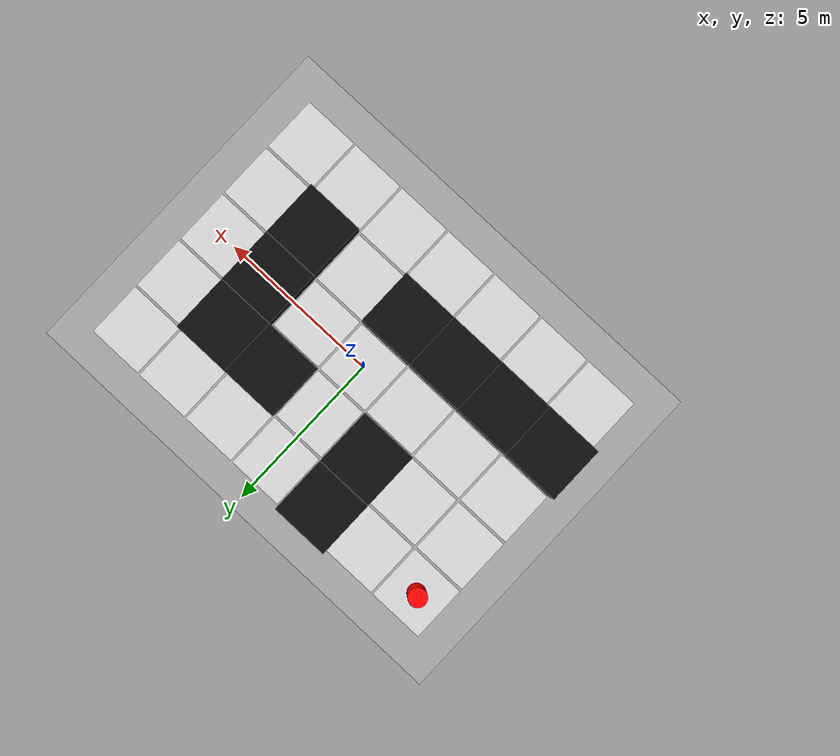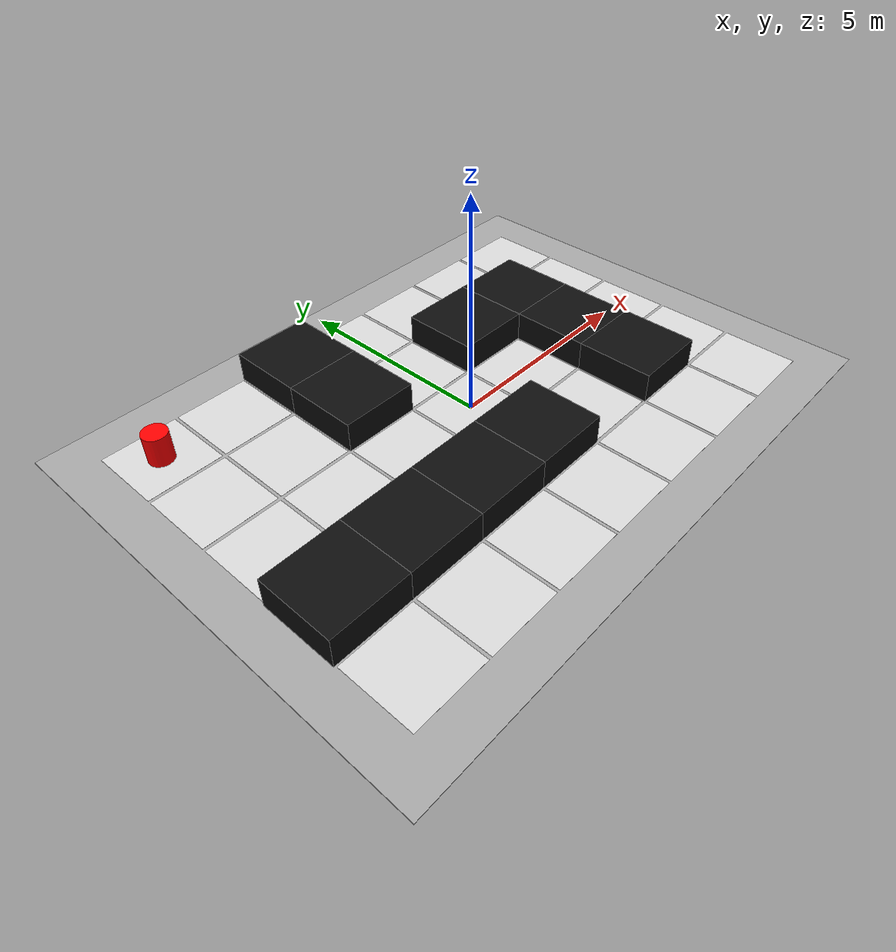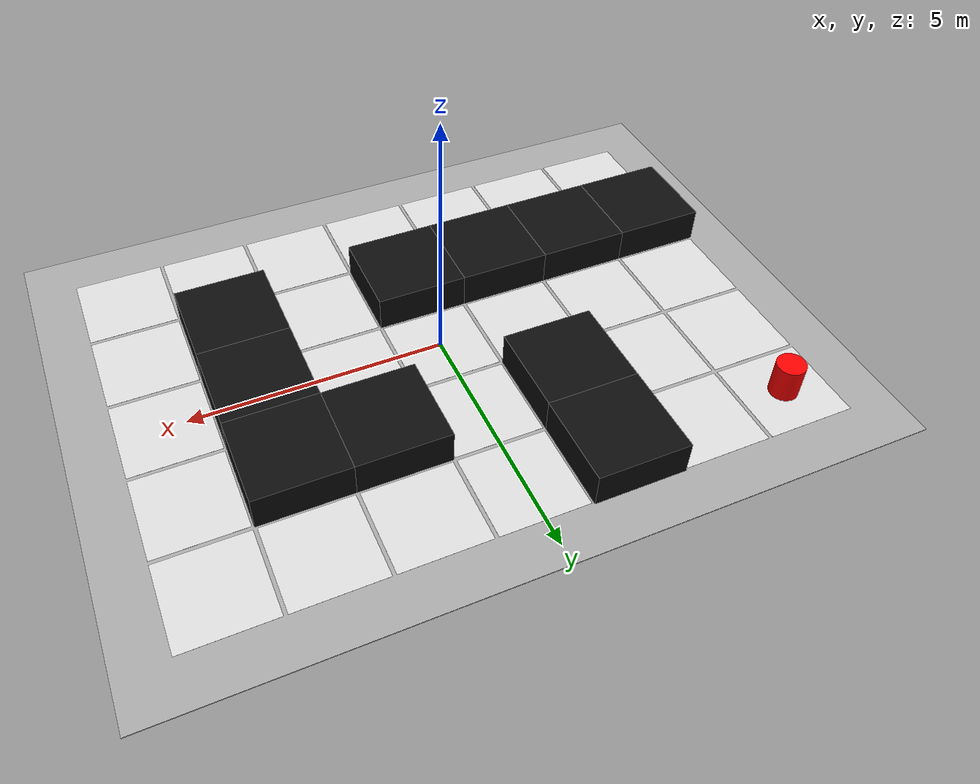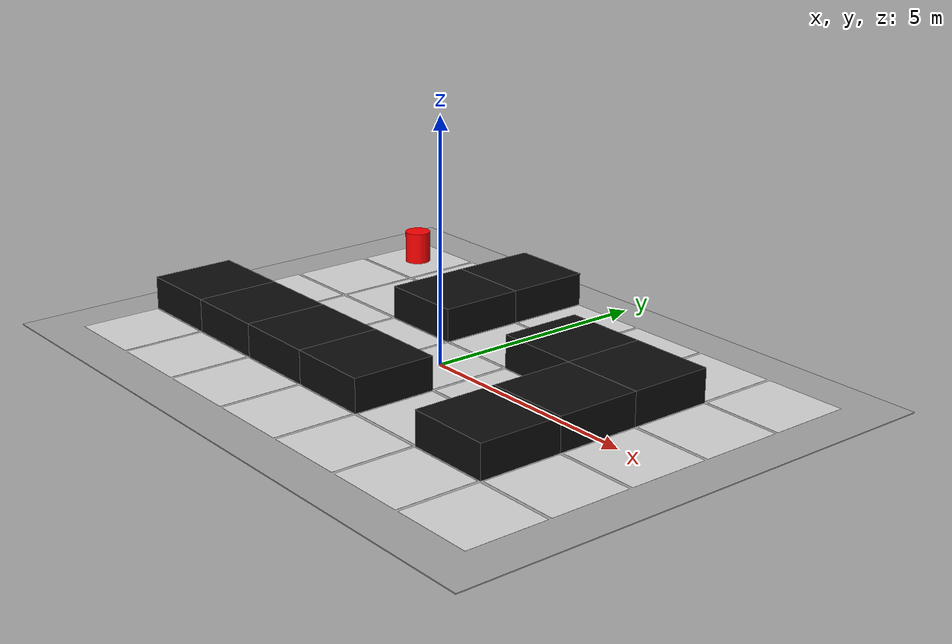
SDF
<?xml version="1.0" ?>
<sdf version="1.6">
  <world name="ssm_2d_grid_world">
    <plugin name="gazebo_ros_init" filename="libgazebo_ros_init.so"/>
    <plugin name="gazebo_ros_factory" filename="libgazebo_ros_factory.so"/>

    <include>
      <uri>model://sun</uri>
    </include>

    <physics name="default_physics" type="ode">
      <max_step_size>0.001</max_step_size>
      <real_time_factor>1.0</real_time_factor>
    </physics>

    <model name="grid_floor">
      <static>true</static>
      <pose>0.000 0.000 -0.010 0 0 0</pose>
      <link name="link">
        <collision name="collision">
          <geometry>
            <box><size>14.400 10.800 0.020</size></box>
          </geometry>
        </collision>
        <visual name="visual">
          <geometry>
            <box><size>14.400 10.800 0.020</size></box>
          </geometry>
          <material>
            <ambient>0.65 0.65 0.65 1</ambient>
            <diffuse>0.65 0.65 0.65 1</diffuse>
          </material>
        </visual>
      </link>
    </model>

    <model name="cell_0_0">
      <static>true</static>
      <pose>-5.400 3.600 0.001 0 0 0</pose>
      <link name="link">
        <collision name="collision">
          <geometry>
            <box><size>1.728 1.728 0.002</size></box>
          </geometry>
        </collision>
        <visual name="visual">
          <geometry>
            <box><size>1.728 1.728 0.002</size></box>
          </geometry>
          <material>
            <ambient>0.85 0.85 0.85 1</ambient>
            <diffuse>0.85 0.85 0.85 1</diffuse>
          </material>
        </visual>
      </link>
    </model>

    <model name="cell_0_1">
      <static>true</static>
      <pose>-3.600 3.600 0.001 0 0 0</pose>
      <link name="link">
        <collision name="collision">
          <geometry>
            <box><size>1.728 1.728 0.002</size></box>
          </geometry>
        </collision>
        <visual name="visual">
          <geometry>
            <box><size>1.728 1.728 0.002</size></box>
          </geometry>
          <material>
            <ambient>0.85 0.85 0.85 1</ambient>
            <diffuse>0.85 0.85 0.85 1</diffuse>
          </material>
        </visual>
      </link>
    </model>

    <model name="wall_0_2">
      <static>true</static>
      <pose>-1.800 3.600 0.350 0 0 0</pose>
      <link name="link">
        <collision name="collision">
          <geometry>
            <box><size>1.800 1.800 0.700</size></box>
          </geometry>
        </collision>
        <visual name="visual">
          <geometry>
            <box><size>1.800 1.800 0.700</size></box>
          </geometry>
          <material>
            <ambient>0.05 0.05 0.05 1</ambient>
            <diffuse>0.05 0.05 0.05 1</diffuse>
          </material>
        </visual>
      </link>
    </model>

    <model name="cell_0_3">
      <static>true</static>
      <pose>0.000 3.600 0.001 0 0 0</pose>
      <link name="link">
        <collision name="collision">
          <geometry>
            <box><size>1.728 1.728 0.002</size></box>
          </geometry>
        </collision>
        <visual name="visual">
          <geometry>
            <box><size>1.728 1.728 0.002</size></box>
          </geometry>
          <material>
            <ambient>0.85 0.85 0.85 1</ambient>
            <diffuse>0.85 0.85 0.85 1</diffuse>
          </material>
        </visual>
      </link>
    </model>

    <model name="cell_0_4">
      <static>true</static>
      <pose>1.800 3.600 0.001 0 0 0</pose>
      <link name="link">
        <collision name="collision">
          <geometry>
            <box><size>1.728 1.728 0.002</size></box>
          </geometry>
        </collision>
        <visual name="visual">
          <geometry>
            <box><size>1.728 1.728 0.002</size></box>
          </geometry>
          <material>
            <ambient>0.85 0.85 0.85 1</ambient>
            <diffuse>0.85 0.85 0.85 1</diffuse>
          </material>
        </visual>
      </link>
    </model>

    <model name="cell_0_5">
      <static>true</static>
      <pose>3.600 3.600 0.001 0 0 0</pose>
      <link name="link">
        <collision name="collision">
          <geometry>
            <box><size>1.728 1.728 0.002</size></box>
          </geometry>
        </collision>
        <visual name="visual">
          <geometry>
            <box><size>1.728 1.728 0.002</size></box>
          </geometry>
          <material>
            <ambient>0.85 0.85 0.85 1</ambient>
            <diffuse>0.85 0.85 0.85 1</diffuse>
          </material>
        </visual>
      </link>
    </model>

    <model name="cell_0_6">
      <static>true</static>
      <pose>5.400 3.600 0.001 0 0 0</pose>
      <link name="link">
        <collision name="collision">
          <geometry>
            <box><size>1.728 1.728 0.002</size></box>
          </geometry>
        </collision>
        <visual name="visual">
          <geometry>
            <box><size>1.728 1.728 0.002</size></box>
          </geometry>
          <material>
            <ambient>0.85 0.85 0.85 1</ambient>
            <diffuse>0.85 0.85 0.85 1</diffuse>
          </material>
        </visual>
      </link>
    </model>

    <model name="cell_1_0">
      <static>true</static>
      <pose>-5.400 1.800 0.001 0 0 0</pose>
      <link name="link">
        <collision name="collision">
          <geometry>
            <box><size>1.728 1.728 0.002</size></box>
          </geometry>
        </collision>
        <visual name="visual">
          <geometry>
            <box><size>1.728 1.728 0.002</size></box>
          </geometry>
          <material>
            <ambient>0.85 0.85 0.85 1</ambient>
            <diffuse>0.85 0.85 0.85 1</diffuse>
          </material>
        </visual>
      </link>
    </model>

    <model name="cell_1_1">
      <static>true</static>
      <pose>-3.600 1.800 0.001 0 0 0</pose>
      <link name="link">
        <collision name="collision">
          <geometry>
            <box><size>1.728 1.728 0.002</size></box>
          </geometry>
        </collision>
        <visual name="visual">
          <geometry>
            <box><size>1.728 1.728 0.002</size></box>
          </geometry>
          <material>
            <ambient>0.85 0.85 0.85 1</ambient>
            <diffuse>0.85 0.85 0.85 1</diffuse>
          </material>
        </visual>
      </link>
    </model>

    <model name="wall_1_2">
      <static>true</static>
      <pose>-1.800 1.800 0.350 0 0 0</pose>
      <link name="link">
        <collision name="collision">
          <geometry>
            <box><size>1.800 1.800 0.700</size></box>
          </geometry>
        </collision>
        <visual name="visual">
          <geometry>
            <box><size>1.800 1.800 0.700</size></box>
          </geometry>
          <material>
            <ambient>0.05 0.05 0.05 1</ambient>
            <diffuse>0.05 0.05 0.05 1</diffuse>
          </material>
        </visual>
      </link>
    </model>

    <model name="cell_1_3">
      <static>true</static>
      <pose>0.000 1.800 0.001 0 0 0</pose>
      <link name="link">
        <collision name="collision">
          <geometry>
            <box><size>1.728 1.728 0.002</size></box>
          </geometry>
        </collision>
        <visual name="visual">
          <geometry>
            <box><size>1.728 1.728 0.002</size></box>
          </geometry>
          <material>
            <ambient>0.85 0.85 0.85 1</ambient>
            <diffuse>0.85 0.85 0.85 1</diffuse>
          </material>
        </visual>
      </link>
    </model>

    <model name="wall_1_4">
      <static>true</static>
      <pose>1.800 1.800 0.350 0 0 0</pose>
      <link name="link">
        <collision name="collision">
          <geometry>
            <box><size>1.800 1.800 0.700</size></box>
          </geometry>
        </collision>
        <visual name="visual">
          <geometry>
            <box><size>1.800 1.800 0.700</size></box>
          </geometry>
          <material>
            <ambient>0.05 0.05 0.05 1</ambient>
            <diffuse>0.05 0.05 0.05 1</diffuse>
          </material>
        </visual>
      </link>
    </model>

    <model name="wall_1_5">
      <static>true</static>
      <pose>3.600 1.800 0.350 0 0 0</pose>
      <link name="link">
        <collision name="collision">
          <geometry>
            <box><size>1.800 1.800 0.700</size></box>
          </geometry>
        </collision>
        <visual name="visual">
          <geometry>
            <box><size>1.800 1.800 0.700</size></box>
          </geometry>
          <material>
            <ambient>0.05 0.05 0.05 1</ambient>
            <diffuse>0.05 0.05 0.05 1</diffuse>
          </material>
        </visual>
      </link>
    </model>

    <model name="cell_1_6">
      <static>true</static>
      <pose>5.400 1.800 0.001 0 0 0</pose>
      <link name="link">
        <collision name="collision">
          <geometry>
            <box><size>1.728 1.728 0.002</size></box>
          </geometry>
        </collision>
        <visual name="visual">
          <geometry>
            <box><size>1.728 1.728 0.002</size></box>
          </geometry>
          <material>
            <ambient>0.85 0.85 0.85 1</ambient>
            <diffuse>0.85 0.85 0.85 1</diffuse>
          </material>
        </visual>
      </link>
    </model>

    <model name="cell_2_0">
      <static>true</static>
      <pose>-5.400 0.000 0.001 0 0 0</pose>
      <link name="link">
        <collision name="collision">
          <geometry>
            <box><size>1.728 1.728 0.002</size></box>
          </geometry>
        </collision>
        <visual name="visual">
          <geometry>
            <box><size>1.728 1.728 0.002</size></box>
          </geometry>
          <material>
            <ambient>0.85 0.85 0.85 1</ambient>
            <diffuse>0.85 0.85 0.85 1</diffuse>
          </material>
        </visual>
      </link>
    </model>

    <model name="cell_2_1">
      <static>true</static>
      <pose>-3.600 0.000 0.001 0 0 0</pose>
      <link name="link">
        <collision name="collision">
          <geometry>
            <box><size>1.728 1.728 0.002</size></box>
          </geometry>
        </collision>
        <visual name="visual">
          <geometry>
            <box><size>1.728 1.728 0.002</size></box>
          </geometry>
          <material>
            <ambient>0.85 0.85 0.85 1</ambient>
            <diffuse>0.85 0.85 0.85 1</diffuse>
          </material>
        </visual>
      </link>
    </model>

    <model name="cell_2_2">
      <static>true</static>
      <pose>-1.800 0.000 0.001 0 0 0</pose>
      <link name="link">
        <collision name="collision">
          <geometry>
            <box><size>1.728 1.728 0.002</size></box>
          </geometry>
        </collision>
        <visual name="visual">
          <geometry>
            <box><size>1.728 1.728 0.002</size></box>
          </geometry>
          <material>
            <ambient>0.85 0.85 0.85 1</ambient>
            <diffuse>0.85 0.85 0.85 1</diffuse>
          </material>
        </visual>
      </link>
    </model>

    <model name="cell_2_3">
      <static>true</static>
      <pose>0.000 0.000 0.001 0 0 0</pose>
      <link name="link">
        <collision name="collision">
          <geometry>
            <box><size>1.728 1.728 0.002</size></box>
          </geometry>
        </collision>
        <visual name="visual">
          <geometry>
            <box><size>1.728 1.728 0.002</size></box>
          </geometry>
          <material>
            <ambient>0.85 0.85 0.85 1</ambient>
            <diffuse>0.85 0.85 0.85 1</diffuse>
          </material>
        </visual>
      </link>
    </model>

    <model name="cell_2_4">
      <static>true</static>
      <pose>1.800 0.000 0.001 0 0 0</pose>
      <link name="link">
        <collision name="collision">
          <geometry>
            <box><size>1.728 1.728 0.002</size></box>
          </geometry>
        </collision>
        <visual name="visual">
          <geometry>
            <box><size>1.728 1.728 0.002</size></box>
          </geometry>
          <material>
            <ambient>0.85 0.85 0.85 1</ambient>
            <diffuse>0.85 0.85 0.85 1</diffuse>
          </material>
        </visual>
      </link>
    </model>

    <model name="wall_2_5">
      <static>true</static>
      <pose>3.600 0.000 0.350 0 0 0</pose>
      <link name="link">
        <collision name="collision">
          <geometry>
            <box><size>1.800 1.800 0.700</size></box>
          </geometry>
        </collision>
        <visual name="visual">
          <geometry>
            <box><size>1.800 1.800 0.700</size></box>
          </geometry>
          <material>
            <ambient>0.05 0.05 0.05 1</ambient>
            <diffuse>0.05 0.05 0.05 1</diffuse>
          </material>
        </visual>
      </link>
    </model>

    <model name="cell_2_6">
      <static>true</static>
      <pose>5.400 0.000 0.001 0 0 0</pose>
      <link name="link">
        <collision name="collision">
          <geometry>
            <box><size>1.728 1.728 0.002</size></box>
          </geometry>
        </collision>
        <visual name="visual">
          <geometry>
            <box><size>1.728 1.728 0.002</size></box>
          </geometry>
          <material>
            <ambient>0.85 0.85 0.85 1</ambient>
            <diffuse>0.85 0.85 0.85 1</diffuse>
          </material>
        </visual>
      </link>
    </model>

    <model name="wall_3_0">
      <static>true</static>
      <pose>-5.400 -1.800 0.350 0 0 0</pose>
      <link name="link">
        <collision name="collision">
          <geometry>
            <box><size>1.800 1.800 0.700</size></box>
          </geometry>
        </collision>
        <visual name="visual">
          <geometry>
            <box><size>1.800 1.800 0.700</size></box>
          </geometry>
          <material>
            <ambient>0.05 0.05 0.05 1</ambient>
            <diffuse>0.05 0.05 0.05 1</diffuse>
          </material>
        </visual>
      </link>
    </model>

    <model name="wall_3_1">
      <static>true</static>
      <pose>-3.600 -1.800 0.350 0 0 0</pose>
      <link name="link">
        <collision name="collision">
          <geometry>
            <box><size>1.800 1.800 0.700</size></box>
          </geometry>
        </collision>
        <visual name="visual">
          <geometry>
            <box><size>1.800 1.800 0.700</size></box>
          </geometry>
          <material>
            <ambient>0.05 0.05 0.05 1</ambient>
            <diffuse>0.05 0.05 0.05 1</diffuse>
          </material>
        </visual>
      </link>
    </model>

    <model name="wall_3_2">
      <static>true</static>
      <pose>-1.800 -1.800 0.350 0 0 0</pose>
      <link name="link">
        <collision name="collision">
          <geometry>
            <box><size>1.800 1.800 0.700</size></box>
          </geometry>
        </collision>
        <visual name="visual">
          <geometry>
            <box><size>1.800 1.800 0.700</size></box>
          </geometry>
          <material>
            <ambient>0.05 0.05 0.05 1</ambient>
            <diffuse>0.05 0.05 0.05 1</diffuse>
          </material>
        </visual>
      </link>
    </model>

    <model name="wall_3_3">
      <static>true</static>
      <pose>0.000 -1.800 0.350 0 0 0</pose>
      <link name="link">
        <collision name="collision">
          <geometry>
            <box><size>1.800 1.800 0.700</size></box>
          </geometry>
        </collision>
        <visual name="visual">
          <geometry>
            <box><size>1.800 1.800 0.700</size></box>
          </geometry>
          <material>
            <ambient>0.05 0.05 0.05 1</ambient>
            <diffuse>0.05 0.05 0.05 1</diffuse>
          </material>
        </visual>
      </link>
    </model>

    <model name="cell_3_4">
      <static>true</static>
      <pose>1.800 -1.800 0.001 0 0 0</pose>
      <link name="link">
        <collision name="collision">
          <geometry>
            <box><size>1.728 1.728 0.002</size></box>
          </geometry>
        </collision>
        <visual name="visual">
          <geometry>
            <box><size>1.728 1.728 0.002</size></box>
          </geometry>
          <material>
            <ambient>0.85 0.85 0.85 1</ambient>
            <diffuse>0.85 0.85 0.85 1</diffuse>
          </material>
        </visual>
      </link>
    </model>

    <model name="wall_3_5">
      <static>true</static>
      <pose>3.600 -1.800 0.350 0 0 0</pose>
      <link name="link">
        <collision name="collision">
          <geometry>
            <box><size>1.800 1.800 0.700</size></box>
          </geometry>
        </collision>
        <visual name="visual">
          <geometry>
            <box><size>1.800 1.800 0.700</size></box>
          </geometry>
          <material>
            <ambient>0.05 0.05 0.05 1</ambient>
            <diffuse>0.05 0.05 0.05 1</diffuse>
          </material>
        </visual>
      </link>
    </model>

    <model name="cell_3_6">
      <static>true</static>
      <pose>5.400 -1.800 0.001 0 0 0</pose>
      <link name="link">
        <collision name="collision">
          <geometry>
            <box><size>1.728 1.728 0.002</size></box>
          </geometry>
        </collision>
        <visual name="visual">
          <geometry>
            <box><size>1.728 1.728 0.002</size></box>
          </geometry>
          <material>
            <ambient>0.85 0.85 0.85 1</ambient>
            <diffuse>0.85 0.85 0.85 1</diffuse>
          </material>
        </visual>
      </link>
    </model>

    <model name="cell_4_0">
      <static>true</static>
      <pose>-5.400 -3.600 0.001 0 0 0</pose>
      <link name="link">
        <collision name="collision">
          <geometry>
            <box><size>1.728 1.728 0.002</size></box>
          </geometry>
        </collision>
        <visual name="visual">
          <geometry>
            <box><size>1.728 1.728 0.002</size></box>
          </geometry>
          <material>
            <ambient>0.85 0.85 0.85 1</ambient>
            <diffuse>0.85 0.85 0.85 1</diffuse>
          </material>
        </visual>
      </link>
    </model>

    <model name="cell_4_1">
      <static>true</static>
      <pose>-3.600 -3.600 0.001 0 0 0</pose>
      <link name="link">
        <collision name="collision">
          <geometry>
            <box><size>1.728 1.728 0.002</size></box>
          </geometry>
        </collision>
        <visual name="visual">
          <geometry>
            <box><size>1.728 1.728 0.002</size></box>
          </geometry>
          <material>
            <ambient>0.85 0.85 0.85 1</ambient>
            <diffuse>0.85 0.85 0.85 1</diffuse>
          </material>
        </visual>
      </link>
    </model>

    <model name="cell_4_2">
      <static>true</static>
      <pose>-1.800 -3.600 0.001 0 0 0</pose>
      <link name="link">
        <collision name="collision">
          <geometry>
            <box><size>1.728 1.728 0.002</size></box>
          </geometry>
        </collision>
        <visual name="visual">
          <geometry>
            <box><size>1.728 1.728 0.002</size></box>
          </geometry>
          <material>
            <ambient>0.85 0.85 0.85 1</ambient>
            <diffuse>0.85 0.85 0.85 1</diffuse>
          </material>
        </visual>
      </link>
    </model>

    <model name="cell_4_3">
      <static>true</static>
      <pose>0.000 -3.600 0.001 0 0 0</pose>
      <link name="link">
        <collision name="collision">
          <geometry>
            <box><size>1.728 1.728 0.002</size></box>
          </geometry>
        </collision>
        <visual name="visual">
          <geometry>
            <box><size>1.728 1.728 0.002</size></box>
          </geometry>
          <material>
            <ambient>0.85 0.85 0.85 1</ambient>
            <diffuse>0.85 0.85 0.85 1</diffuse>
          </material>
        </visual>
      </link>
    </model>

    <model name="cell_4_4">
      <static>true</static>
      <pose>1.800 -3.600 0.001 0 0 0</pose>
      <link name="link">
        <collision name="collision">
          <geometry>
            <box><size>1.728 1.728 0.002</size></box>
          </geometry>
        </collision>
        <visual name="visual">
          <geometry>
            <box><size>1.728 1.728 0.002</size></box>
          </geometry>
          <material>
            <ambient>0.85 0.85 0.85 1</ambient>
            <diffuse>0.85 0.85 0.85 1</diffuse>
          </material>
        </visual>
      </link>
    </model>

    <model name="cell_4_5">
      <static>true</static>
      <pose>3.600 -3.600 0.001 0 0 0</pose>
      <link name="link">
        <collision name="collision">
          <geometry>
            <box><size>1.728 1.728 0.002</size></box>
          </geometry>
        </collision>
        <visual name="visual">
          <geometry>
            <box><size>1.728 1.728 0.002</size></box>
          </geometry>
          <material>
            <ambient>0.85 0.85 0.85 1</ambient>
            <diffuse>0.85 0.85 0.85 1</diffuse>
          </material>
        </visual>
      </link>
    </model>

    <model name="cell_4_6">
      <static>true</static>
      <pose>5.400 -3.600 0.001 0 0 0</pose>
      <link name="link">
        <collision name="collision">
          <geometry>
            <box><size>1.728 1.728 0.002</size></box>
          </geometry>
        </collision>
        <visual name="visual">
          <geometry>
            <box><size>1.728 1.728 0.002</size></box>
          </geometry>
          <material>
            <ambient>0.85 0.85 0.85 1</ambient>
            <diffuse>0.85 0.85 0.85 1</diffuse>
          </material>
        </visual>
      </link>
    </model>

    <model name="target_cylinder">
      <static>true</static>
      <pose>-5.400 3.600 0.350 0 0 0</pose>
      <link name="link">
        <collision name="collision">
          <geometry>
            <cylinder>
              <radius>0.280</radius>
              <length>0.700</length>
            </cylinder>
          </geometry>
        </collision>
        <visual name="visual">
          <geometry>
            <cylinder>
              <radius>0.280</radius>
              <length>0.700</length>
            </cylinder>
          </geometry>
          <material>
            <ambient>1.0 0.0 0.0 1</ambient>
            <diffuse>1.0 0.0 0.0 1</diffuse>
          </material>
        </visual>
      </link>
    </model>

  </world>
</sdf>
